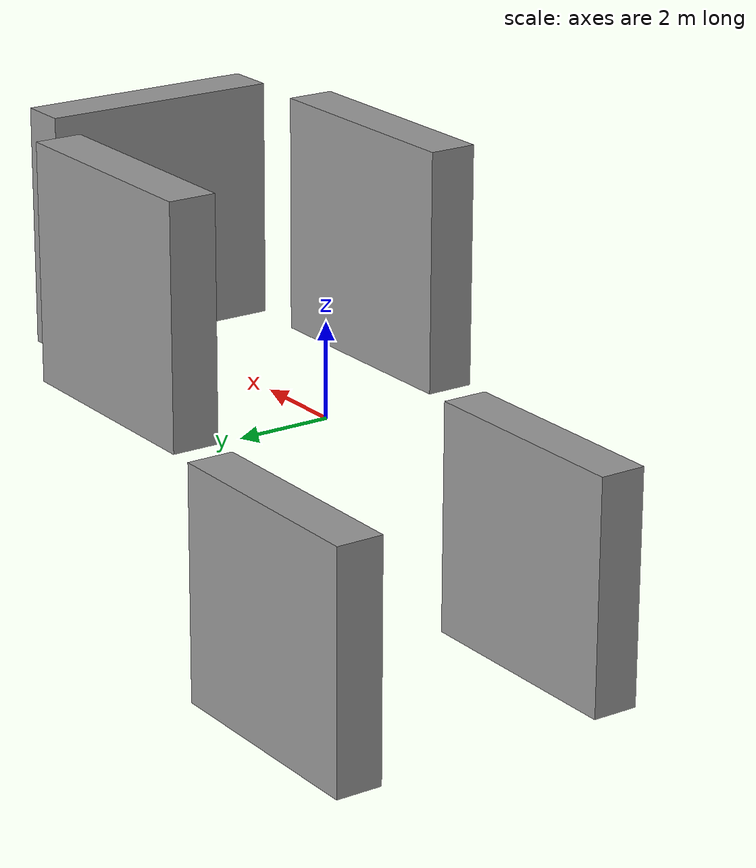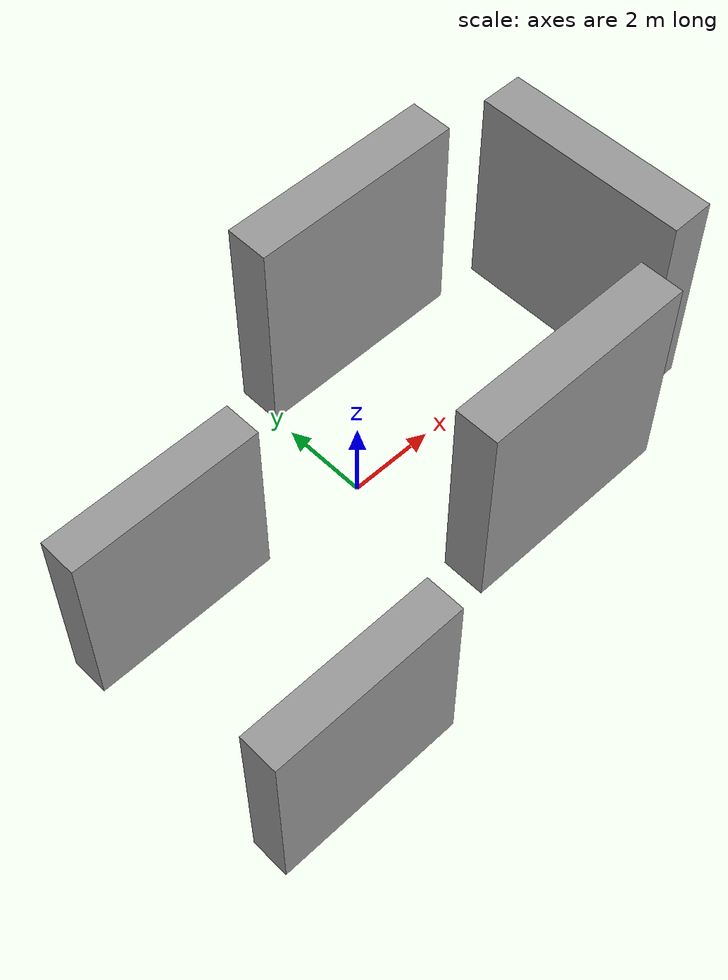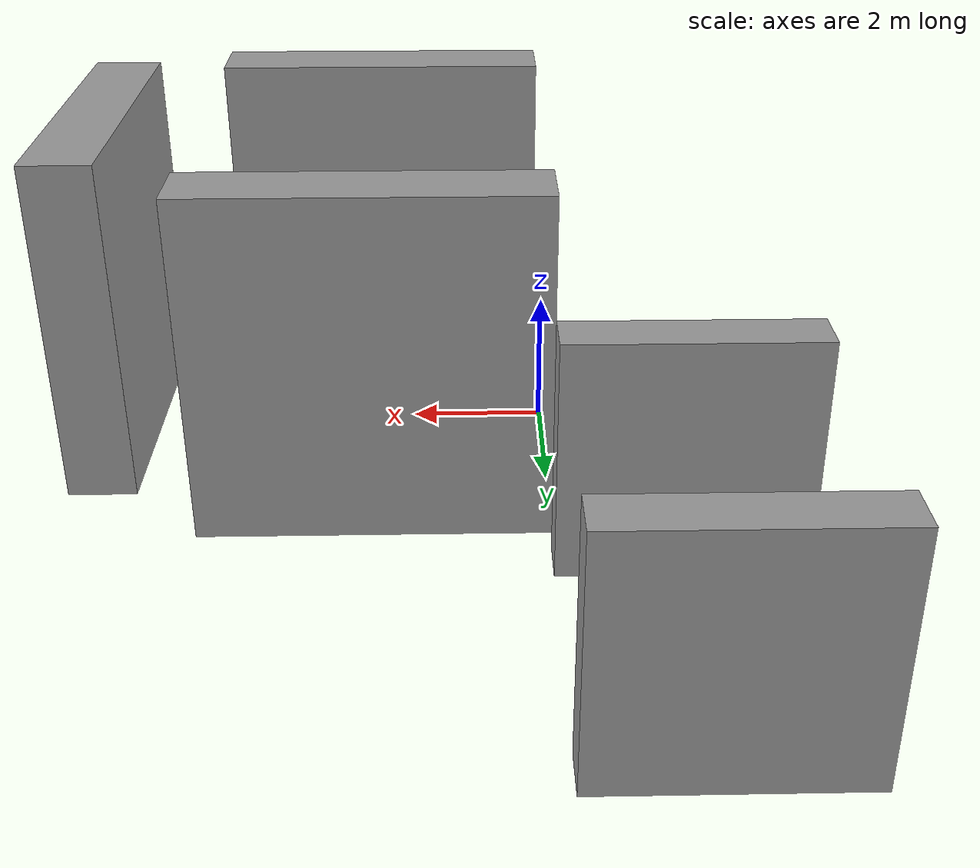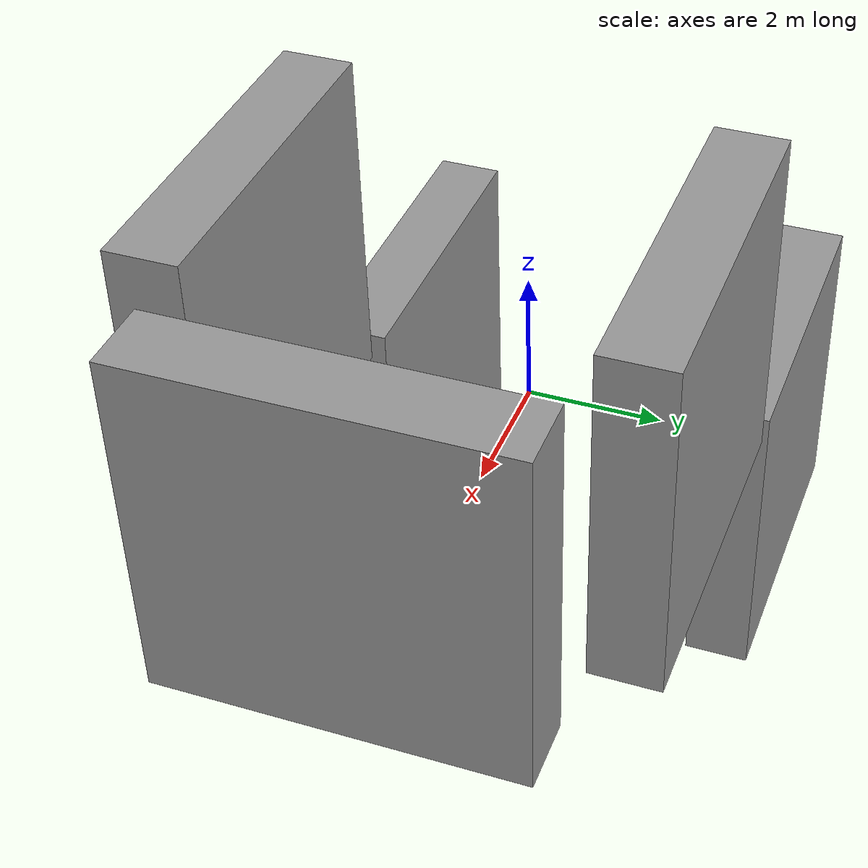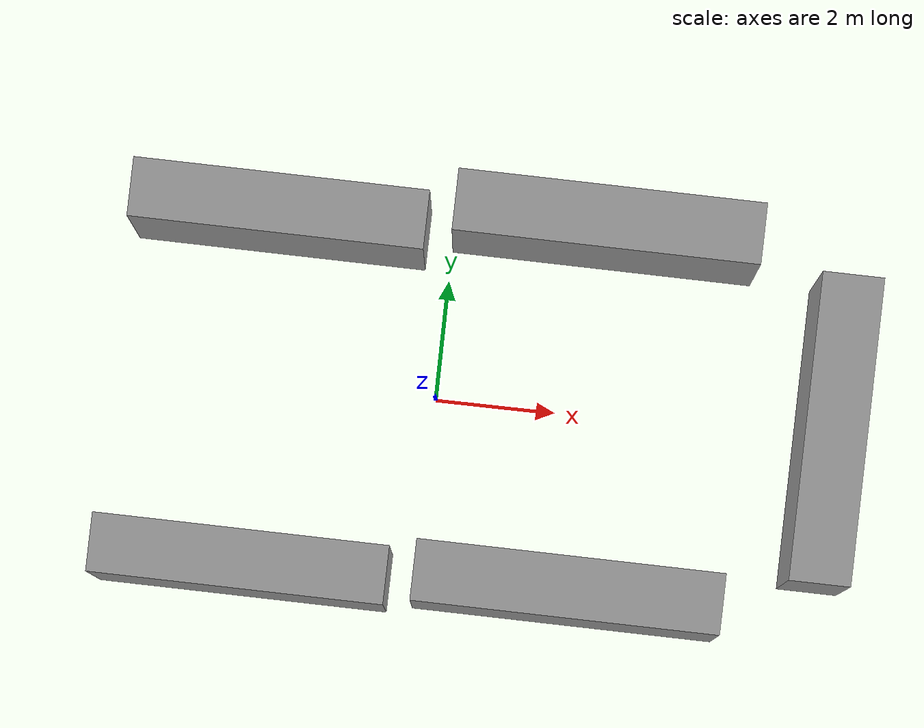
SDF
<sdf version="1.6">
 <world name="vrc_task_1">
  <scene><ambient>0.4 0.4 0.4 1</ambient><background>0.7 0.7 0.7 1</background><shadows>1</shadows></scene>
  <physics name="default_physics" default="0" type="ode">
   <ode>
    <solver>
     <type>quick</type>
     <iters>10</iters>
     <sor>1</sor>
     <use_dynamic_moi_rescaling>0</use_dynamic_moi_rescaling>
    </solver>
    <constraints>
     <cfm>0</cfm>
     <erp>0.2</erp>
     <contact_max_correcting_vel>100</contact_max_correcting_vel>
     <contact_surface_layer>0.001</contact_surface_layer>
    </constraints>
   </ode>
   <max_step_size>0.004</max_step_size>
   <real_time_factor>1</real_time_factor>
   <real_time_update_rate>250</real_time_update_rate>
  </physics>
  <light name="sun" type="directional">
   <pose>0 0 10 0 -0 0</pose>
   <diffuse>0.8 0.8 0.8 1</diffuse>
   <specular>0.2 0.2 0.2 1</specular>
   <attenuation>
    <range>1000</range>
    <constant>0.9</constant>
    <linear>0.01</linear>
    <quadratic>0.001</quadratic>
   </attenuation>
   <direction>-0.5 0.1 -0.9</direction>
  </light>
  <model name="unit_box_0">
   <pose>6.5 0 2.6 0 -0 0</pose>
   <link name="link">
    <inertial>
     <mass>1</mass>
     <inertia>
      <ixx>0.166667</ixx>
      <ixy>0</ixy>
      <ixz>0</ixz>
      <iyy>0.166667</iyy>
      <iyz>0</iyz>
      <izz>0.166667</izz>
     </inertia>
    </inertial>
    <collision name="collision"><geometry><box><size>1 5 5</size></box></geometry></collision>
    <visual name="visual">
     <geometry><box><size>1 5 5</size></box></geometry>
     <material>
      <script><name>Gazebo/Grey</name><uri>file://media/materials/scripts/gazebo.material</uri></script>
     </material>
    </visual>
   </link>
  </model>
  <model name="unit_box_1">
   <pose>2.5 3 2.5 0 -0 1.57</pose>
   <link name="link">
    <inertial>
     <mass>1</mass>
     <inertia>
      <ixx>0.166667</ixx>
      <ixy>0</ixy>
      <ixz>0</ixz>
      <iyy>0.166667</iyy>
      <iyz>0</iyz>
      <izz>0.166667</izz>
     </inertia>
    </inertial>
    <collision name="collision"><geometry><box><size>1 5 5</size></box></geometry></collision>
    <visual name="visual">
     <geometry><box><size>1 5 5</size></box></geometry>
     <material>
      <script><name>Gazebo/Grey</name><uri>file://media/materials/scripts/gazebo.material</uri></script>
     </material>
    </visual>
   </link>
  </model>
  <model name="unit_box_2">
   <pose>2.5 -3 2.5 0 -0 1.57</pose>
   <link name="link">
    <inertial>
     <mass>1</mass>
     <inertia>
      <ixx>0.166667</ixx>
      <ixy>0</ixy>
      <ixz>0</ixz>
      <iyy>0.166667</iyy>
      <iyz>0</iyz>
      <izz>0.166667</izz>
     </inertia>
    </inertial>
    <collision name="collision"><geometry><box><size>1 5 5</size></box></geometry></collision>
    <visual name="visual">
     <geometry><box><size>1 5 5</size></box></geometry>
     <material>
      <script><name>Gazebo/Grey</name><uri>file://media/materials/scripts/gazebo.material</uri></script>
     </material>
    </visual>
   </link>
  </model>
  <model name="unit_box_3">
   <pose>-3 -3 -2.5 0 -0 1.57</pose>
   <link name="link">
    <inertial>
     <mass>1</mass>
     <inertia>
      <ixx>0.166667</ixx>
      <ixy>0</ixy>
      <ixz>0</ixz>
      <iyy>0.166667</iyy>
      <iyz>0</iyz>
      <izz>0.166667</izz>
     </inertia>
    </inertial>
    <collision name="collision"><geometry><box><size>1 5 5</size></box></geometry></collision>
    <visual name="visual">
     <geometry><box><size>1 5 5</size></box></geometry>
     <material>
      <script><name>Gazebo/Grey</name><uri>file://media/materials/scripts/gazebo.material</uri></script>
     </material>
    </visual>
   </link>
  </model>
  <model name="unit_box_4">
   <pose>-3 3 -2.5 0 -0 1.57</pose>
   <link name="link">
    <inertial>
     <mass>1</mass>
     <inertia>
      <ixx>0.166667</ixx>
      <ixy>0</ixy>
      <ixz>0</ixz>
      <iyy>0.166667</iyy>
      <iyz>0</iyz>
      <izz>0.166667</izz>
     </inertia>
    </inertial>
    <collision name="collision"><geometry><box><size>1 5 5</size></box></geometry></collision>
    <visual name="visual">
     <geometry><box><size>1 5 5</size></box></geometry>
     <material>
      <script><name>Gazebo/Grey</name><uri>file://media/materials/scripts/gazebo.material</uri></script>
     </material>
    </visual>
   </link>
  </model>
 </world>
</sdf>
